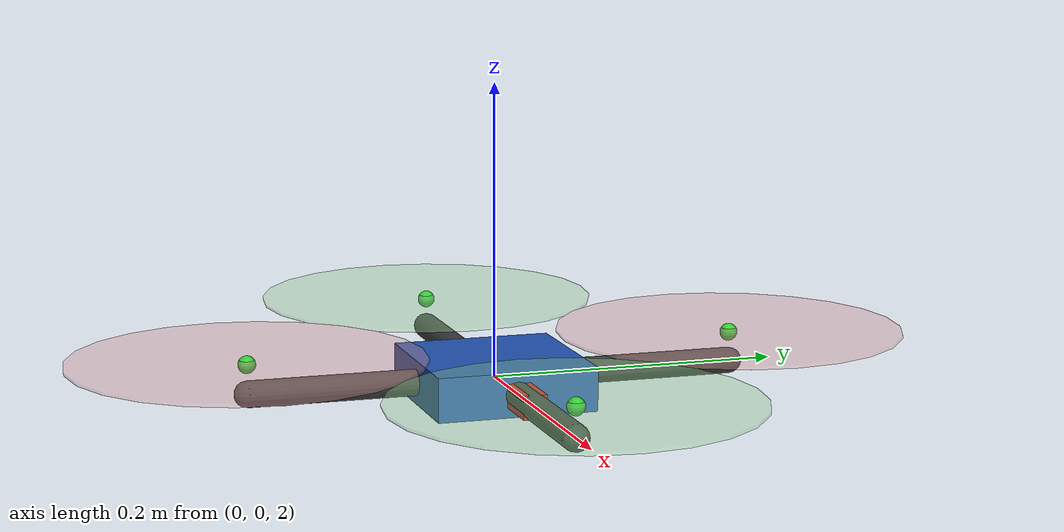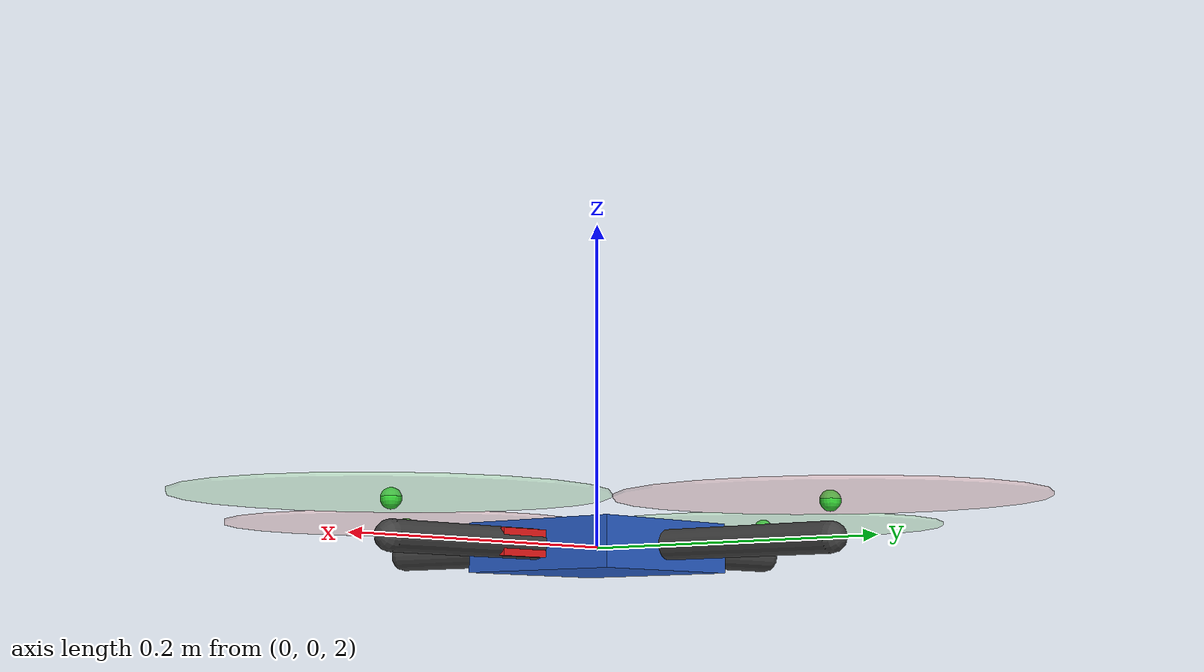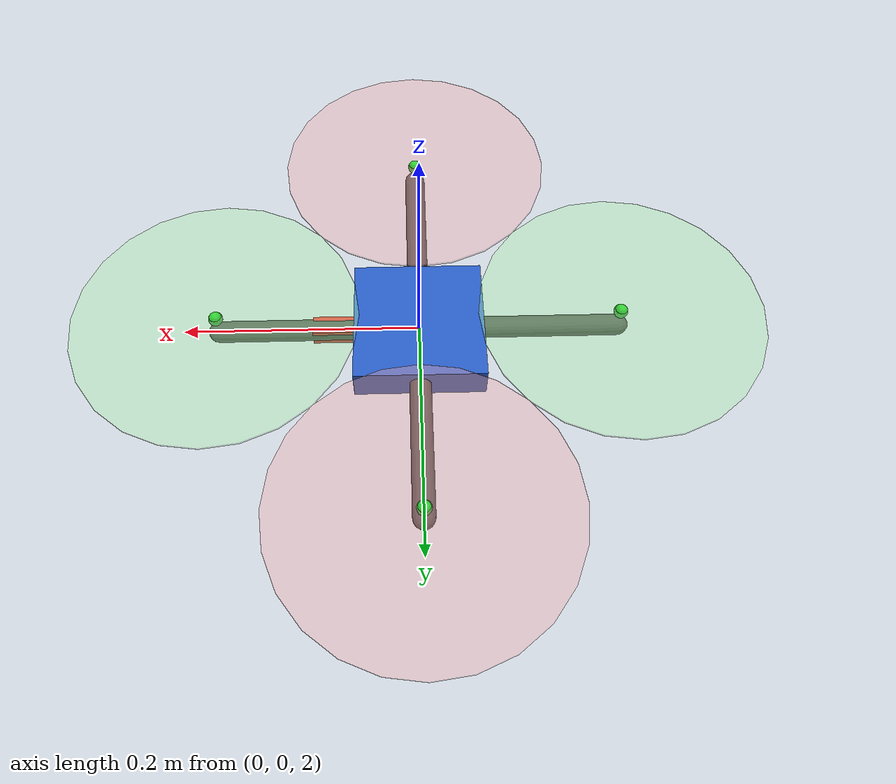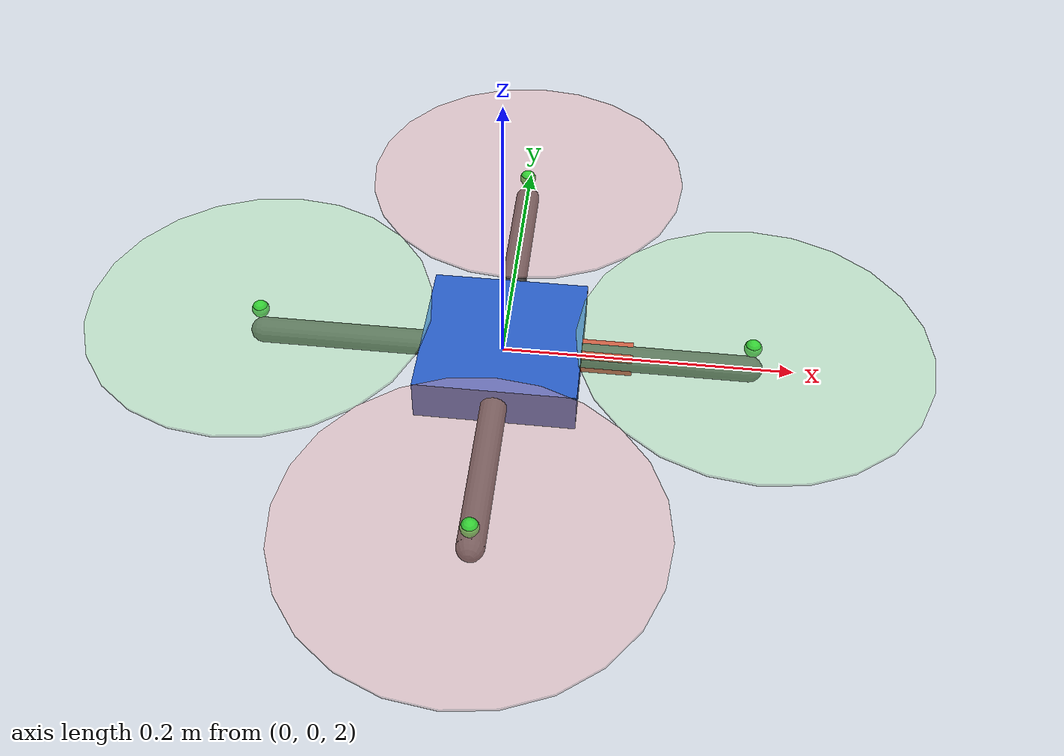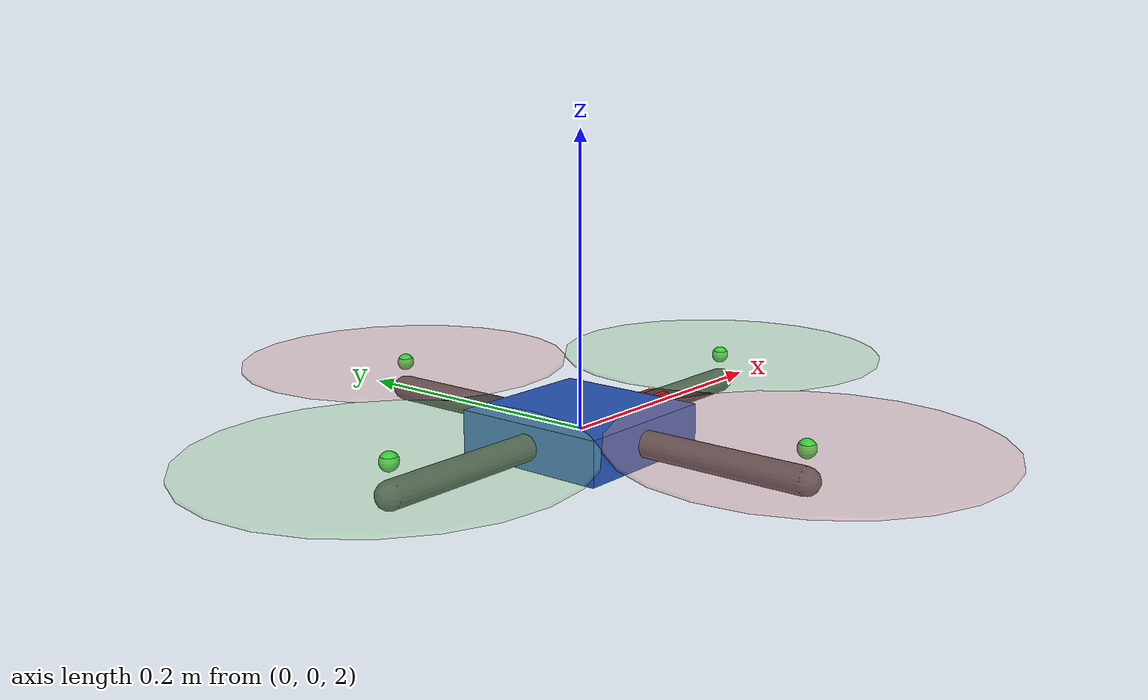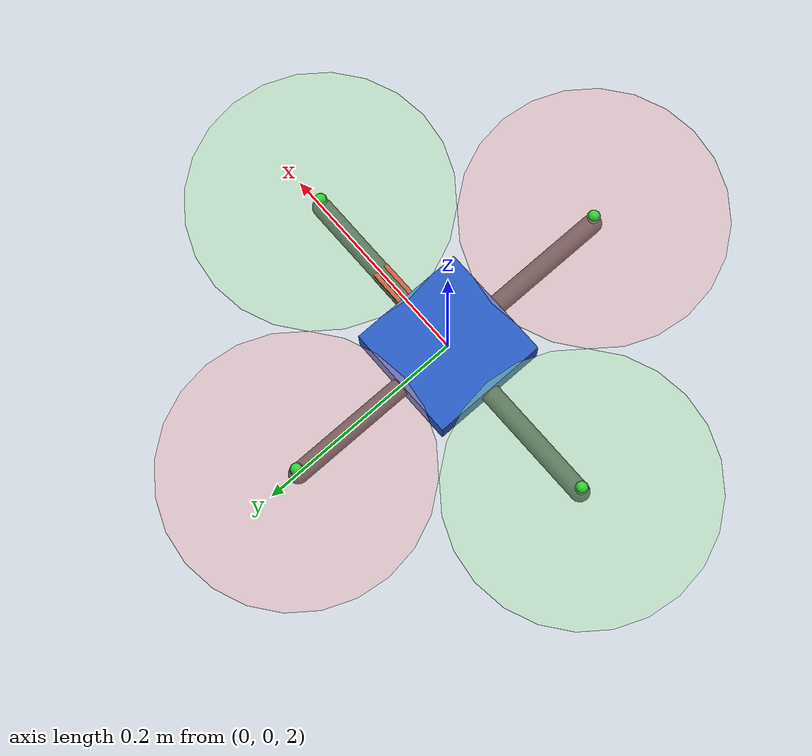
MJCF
<mujoco model="hummingbird">

  <!-- ==================== 编译器设置 ==================== -->
  <compiler angle="radian" inertiafromgeom="false" autolimits="true"/>

  <!-- ==================== 物理选项 ==================== -->
  <!--
    timestep=0.016s → 62.5 Hz，与原 Isaac Sim cfg.sim.dt=0.016 完全一致
    integrator="RK4": 4阶龙格库塔积分，比欧拉法更稳定（飞行场景推荐）
  -->
  <option gravity="0 0 -9.81" timestep="0.016" integrator="RK4"/>

  <!-- ==================== 默认属性 ==================== -->
  <default>
    <!-- 关节默认：无阻尼，无限制 -->
    <joint damping="0.0001" limited="false" armature="0"/>
    <!-- 视觉几何体：无碰撞（contype=0 conaffinity=0） -->
    <geom contype="0" conaffinity="0" density="0"/>
  </default>

  <!-- ==================== 可视化设置 ==================== -->
  <visual>
    <headlight diffuse="0.6 0.6 0.6" ambient="0.4 0.4 0.4" specular="0 0 0"/>
    <rgba haze="0.15 0.25 0.35 1"/>
    <global azimuth="150" elevation="-25" offwidth="1024" offheight="1024"/>
    <quality shadowsize="2048"/>
  </visual>

  <!--
    MJX `ray()` 在 MuJoCo 3.4.0 中会访问 `mat_rgba[m.geom_matid]`。
    当模型完全没有 material 资产时，`mat_rgba` 长度为 0，会触发越界。
    这里显式放置一个哑元材质，避免 scene raycast 路径失败。
  -->
  <asset>
    <material name="raycast_dummy_material" rgba="1 1 1 1"/>
  </asset>

  <!-- ==================== 世界场景 ==================== -->
  <worldbody>

    <!-- 地面（有碰撞） -->
        <geom name="ground" type="plane" size="50 50 0.1" pos="0 0 0"
          rgba="0.38 0.38 0.38 1" contype="2" conaffinity="1" condim="3"
          friction="0.8 0.1 0.1"/>

    <!-- 场景灯光 -->
    <light name="main_light" directional="true"
           diffuse="0.8 0.8 0.8" specular="0.2 0.2 0.2"
           pos="0 0 10" dir="0 0 -1" castshadow="true"/>
    <light name="fill_light" directional="false"
           diffuse="0.3 0.3 0.3" specular="0 0 0"
           pos="5 -5 8" dir="-1 1 -1" castshadow="false"/>

    <!-- ==================== Hummingbird 无人机本体 ==================== -->
    <body name="base_link" pos="0 0 2">

      <!-- 6自由度自由关节（等效 Isaac Sim 的刚体） -->
      <joint name="root_joint" type="free"/>

      <!-- 惯性属性（来自 OmniDrones hummingbird.yaml） -->
      <!--
        mass = 0.716 kg
        Ixx = Iyy = 0.007 kg·m²（对称机体）
        Izz = 0.012 kg·m²（平板形，绕z轴惯量更大）
      -->
      <inertial mass="0.716" pos="0 0 0"
                diaginertia="0.007 0.007 0.012"/>

      <!-- 机体外壳（纯视觉，无碰撞） -->
      <geom name="body" type="box" size="0.055 0.055 0.015"
            rgba="0.15 0.35 0.75 1"/>

      <!--
        简化碰撞代理（真实碰撞用，视觉上不可见）
        - 使用单球体近似机体安全包络，避免让所有视觉几何参与接触求解
        - contype=1, conaffinity=6：与地面(contype=2)和静态障碍(contype=4)发生碰撞
      -->
      <geom name="collision_hull" type="sphere" size="0.18" pos="0 0 0"
        rgba="1 1 1 0" density="0"
        contype="1" conaffinity="14" condim="3"
        friction="0.8 0.1 0.1"/>

      <!-- 前方方向标记（红色，+x 方向） -->
      <geom name="front_marker" type="box" size="0.02 0.008 0.008"
            pos="0.07 0 0" rgba="0.9 0.1 0.1 1"/>

      <!-- 机臂（"+" 型，纯视觉） -->
      <!-- 前后臂（沿x轴） -->
      <geom name="arm_front_back" type="capsule"
            fromto="-0.17 0 0  0.17 0 0" size="0.009"
            rgba="0.25 0.25 0.25 0.95"/>
      <!-- 左右臂（沿y轴） -->
      <geom name="arm_left_right" type="capsule"
            fromto="0 -0.17 0  0 0.17 0" size="0.009"
            rgba="0.25 0.25 0.25 0.95"/>

      <!--
        ====== 电机0：前方 (+x=0.17, y=0, z=0.02) ======
        旋转方向: CCW（逆时针，俯视） → direction = -1
        反应扭矩（偏航）: 负 z 方向 → gear[5] = -0.01602
        螺旋桨盘：半径0.12m，高度0.002m（可视化）
      -->
      <site name="rotor0" pos="0.17 0 0.02" size="0.006" rgba="0.2 0.8 0.2 1"/>
      <geom name="prop0" type="cylinder" pos="0.17 0 0.022"
            size="0.12 0.001" rgba="0.6 0.9 0.6 0.35"/>

      <!--
        ====== 电机1：右方 (x=0, +y=0.17, z=0.02) ======
        旋转方向: CW（顺时针，俯视） → direction = +1
        反应扭矩（偏航）: 正 z 方向 → gear[5] = +0.01602
      -->
      <site name="rotor1" pos="0 0.17 0.02" size="0.006" rgba="0.2 0.8 0.2 1"/>
      <geom name="prop1" type="cylinder" pos="0 0.17 0.022"
            size="0.12 0.001" rgba="0.9 0.6 0.6 0.35"/>

      <!--
        ====== 电机2：后方 (-x=-0.17, y=0, z=0.02) ======
        旋转方向: CCW（逆时针） → gear[5] = -0.01602
      -->
      <site name="rotor2" pos="-0.17 0 0.02" size="0.006" rgba="0.2 0.8 0.2 1"/>
      <geom name="prop2" type="cylinder" pos="-0.17 0 0.022"
            size="0.12 0.001" rgba="0.6 0.9 0.6 0.35"/>

      <!--
        ====== 电机3：左方 (x=0, -y=-0.17, z=0.02) ======
        旋转方向: CW（顺时针） → gear[5] = +0.01602
      -->
      <site name="rotor3" pos="0 -0.17 0.02" size="0.006" rgba="0.2 0.8 0.2 1"/>
      <geom name="prop3" type="cylinder" pos="0 -0.17 0.022"
            size="0.12 0.001" rgba="0.9 0.6 0.6 0.35"/>

    </body> <!-- end base_link -->

  </worldbody>

  <!-- ==================== 执行器（电机推力） ==================== -->
  <actuator>
    <!-- 电机0：前方，CCW，偏航力矩为负 -->
    <general name="motor0" site="rotor0"
             gear="0 0 1  0 0 -0.01602"
             ctrllimited="true" ctrlrange="0 6.0"/>

    <!-- 电机1：右方，CW，偏航力矩为正 -->
    <general name="motor1" site="rotor1"
             gear="0 0 1  0 0  0.01602"
             ctrllimited="true" ctrlrange="0 6.0"/>

    <!-- 电机2：后方，CCW，偏航力矩为负 -->
    <general name="motor2" site="rotor2"
             gear="0 0 1  0 0 -0.01602"
             ctrllimited="true" ctrlrange="0 6.0"/>

    <!-- 电机3：左方，CW，偏航力矩为正 -->
    <general name="motor3" site="rotor3"
             gear="0 0 1  0 0  0.01602"
             ctrllimited="true" ctrlrange="0 6.0"/>
  </actuator>

  <!-- ==================== 传感器（用于 MJX 状态提取） ==================== -->
  <sensor>
    <framepos    name="drone_pos"     objtype="body" objname="base_link"/>
    <framequat   name="drone_quat"    objtype="body" objname="base_link"/>
    <framelinvel name="drone_linvel"  objtype="body" objname="base_link"/>
    <frameangvel name="drone_angvel"  objtype="body" objname="base_link"/>
  </sensor>

</mujoco>
